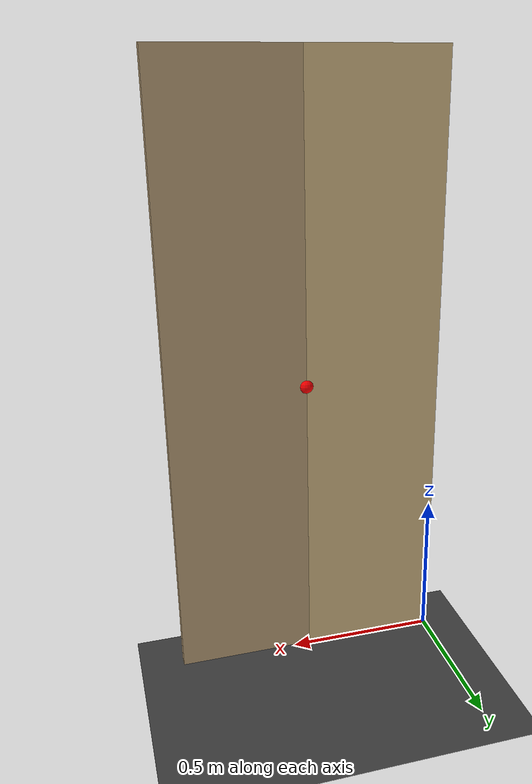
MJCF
<mujoco model="bifold_cabinet">
  <compiler angle="radian"/>
  <option timestep="0.002" gravity="0 0 -9.81"/>
  <asset>
    <texture type="skybox" builtin="gradient" rgb1="0.8 0.9 1" rgb2="0.3 0.4 0.5" width="256" height="256"/>
    <texture name="grid" type="2d" builtin="checker" rgb1="0.2 0.2 0.2" rgb2="0.3 0.3 0.3" width="300" height="300"/>
    <material name="grid" texture="grid" texrepeat="5 5" reflectance="0.1"/>
  </asset>
  <worldbody>
    <light pos="0 -1 3" dir="0 0.3 -1" diffuse="1 1 1"/>
    <geom name="floor" type="plane" size="3 3 0.1" material="grid"/>
    <body name="door" pos="0 0 0">
      <joint name="hinge" type="hinge" pos="0 0 0" axis="0 0 1"
             limited="true" range="-0.17 2.09" damping="0.2" frictionloss="2.0"/>
      <geom name="panel" type="box" pos="0.225 0 1.02" size="0.225 0.02 1.0"
            density="600" rgba="0.8 0.7 0.5 1" contype="0" conaffinity="0"/>
      <site name="handle" pos="0.45 0 1.0" size="0.03" rgba="1 0 0 1"/>
      <body name="leaf" pos="0.45 0 0">
        <joint name="leaf_hinge" type="hinge" pos="0 0 0" axis="0 0 1"
               limited="true" range="-2.0 0.0" damping="0.15" frictionloss="1.0"/>
        <geom name="leaf_panel" type="box" pos="0.225 0 1.02" size="0.225 0.02 1.0"
              density="600" rgba="0.7 0.6 0.45 1" contype="0" conaffinity="0"/>
      </body>
    </body>
    <camera name="view" pos="2.5 -2.8 2.2" xyaxes="1 0.9 0 0 0.4 1"/>
  </worldbody>
</mujoco>
